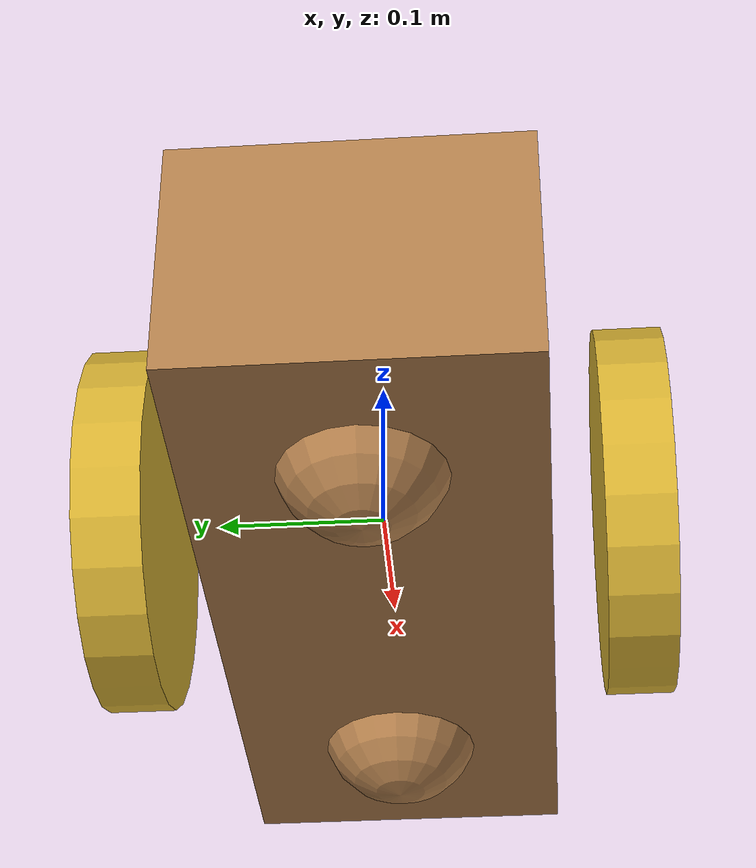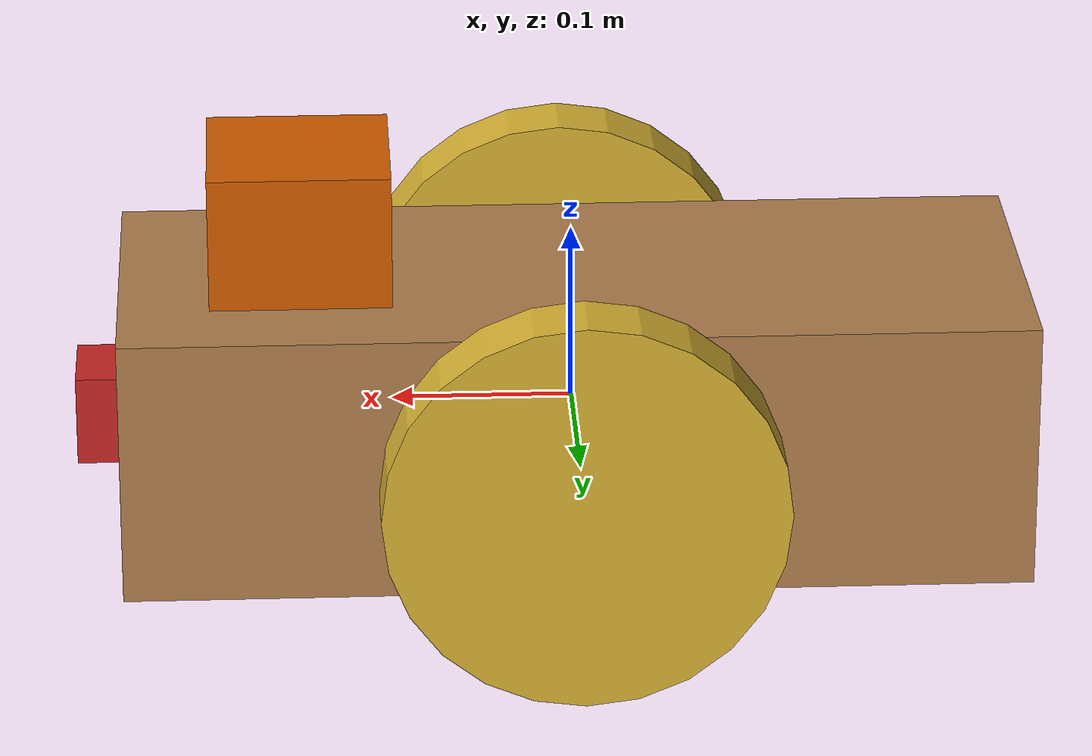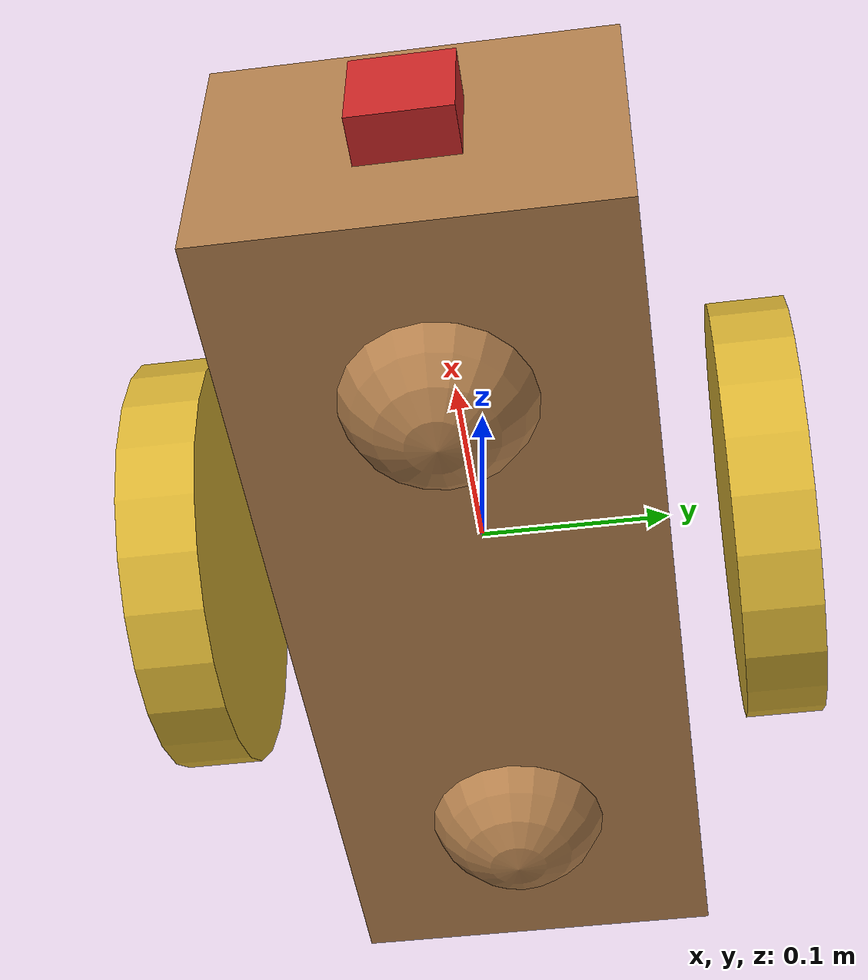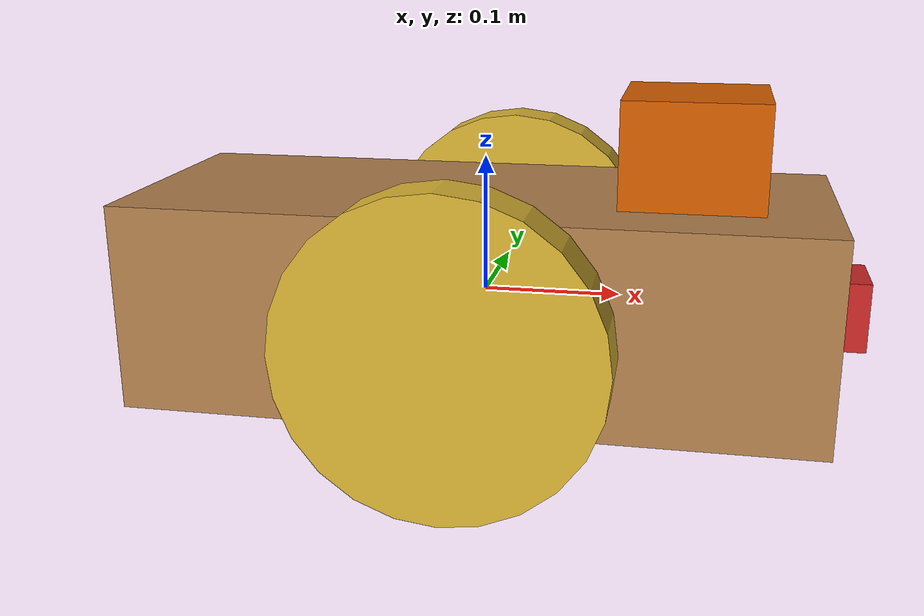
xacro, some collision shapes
<?xml version='1.0'?>

<robot name="my_robot" xmlns:xacro="http://www.ros.org/wiki/xacro">

<gazebo reference="left_wheel">
    <material>Gazebo/Gold</material>
</gazebo>
<gazebo reference="right_wheel">
    <material>Gazebo/Gold</material>
</gazebo>
<gazebo reference="chassis">
    <material>Gazebo/Wood</material>
</gazebo>
<gazebo reference="camera">
    <material>Gazebo/RedBright</material>
</gazebo>
  <link name="base_footprint"></link>
<xacro:include filename="$(find my_robot)/urdf/my_robot.gazebo" />
  <joint name="base_footprint_joint" type="fixed">
    <origin xyz="0 0 0" rpy="0 0 0" />
    <parent link="base_footprint"/>
    <child link="chassis" />
  </joint>

  <link name='chassis'>
    <pose>0 0 0.1 0 0 0</pose>

    <inertial>
      <mass value="15.0"/>
      <origin xyz="0.0 0 0" rpy=" 0 0 0"/>
      <inertia
          ixx="0.1" ixy="0" ixz="0"
          iyy="0.1" iyz="0"
          izz="0.1"
      />
    </inertial>

    <collision name='collision'>
      <origin xyz="0 0 0" rpy=" 0 0 0"/>
      <geometry>
        <box size="0.5 0.2 0.15"/>
      </geometry>
    </collision>

    <visual name='chassis_visual'>
      <origin xyz="0 0 0" rpy=" 0 0 0"/>
      <geometry>
        <box size="0.5 0.2 0.15"/>
      </geometry>
    </visual>

    <collision name='back_caster_collision'>
      <origin xyz="-0.15 0 -0.059" rpy=" 0 0 0"/>
      <geometry>
        <sphere radius="0.05"/>
      </geometry>
    </collision>

    <visual name='back_caster_visual'>
      <origin xyz="-0.15 0 -0.059" rpy=" 0 0 0"/>
      <geometry>
        <sphere radius="0.05"/>
      </geometry>
    </visual>

    <collision name='front_caster_collision'>
      <origin xyz="0.15 0 -0.059" rpy=" 0 0 0"/>
      <geometry>
        <sphere radius="0.05"/>
      </geometry>
    </collision>

    <visual name='front_caster_visual'>
      <origin xyz="0.15 0 -0.059" rpy=" 0 0 0"/>
      <geometry>
        <sphere radius="0.05"/>
      </geometry>
    </visual>

  </link>
 <!-- Create wheel right -->

  <link name="right_wheel">
    <inertial>
      <mass value="5"/>
      <origin rpy="0 1.5707 1.5707" xyz="0 0 0"/>
      <inertia
          ixx="0.1" ixy="0" ixz="0"
          iyy="0.1" iyz="0"
          izz="0.1"
      />
    </inertial>

    <collision name="right_wheel_collision">
      <origin rpy="0 1.5707 1.5707" xyz="0 0 0" />
      <geometry>
        <cylinder length="0.01" radius="0.11"/>
      </geometry>
    </collision>

    <visual name="right_wheel_visual">
      <origin rpy="0 1.5707 1.5707" xyz="0 0 0"/>
      <geometry>
        <cylinder length="0.04" radius="0.11"/>
      </geometry>
    </visual>

  </link>

  <!--   Joint for right wheel  -->
  <joint name="right_wheel_hinge" type="continuous">
    <origin rpy="0 0 0" xyz="0 0.15 0"/>
    <child link="right_wheel" />
    <parent link="chassis"/>
    <axis rpy="0 0 0" xyz="0 1 0"/>
  </joint>

  <!-- Left Wheel link -->

  <link name="left_wheel">
    <inertial>
      <mass value="5"/>
      <origin rpy="0 1.5707 1.5707" xyz="0 0 0"/>
      <inertia
          ixx="0.1" ixy="0" ixz="0"
          iyy="0.1" iyz="0"
          izz="0.1"
      />
    </inertial>

    <collision name="left_wheel_collision">
      <origin rpy="0 1.5707 1.5707" xyz="0 0 0" />
      <geometry>
        <cylinder length="0.04" radius="0.11"/>
      </geometry>
    </collision>

    <visual name="left_wheel_visual">
      <origin rpy="0 1.5707 1.5707" xyz="0 0 0"/>
      <geometry>
        <cylinder length="0.04" radius="0.11"/>
      </geometry>
    </visual>

  </link>

  <!--   Joint for left wheel  -->
  <joint name="left_wheel_hinge" type="continuous">
    <origin rpy="0 0 0" xyz="0 -0.15 0"/>
    <child link="left_wheel" />
    <parent link="chassis"/>
    <axis rpy="0 0 0" xyz="0 1 0"/>
    </joint>
<!-- Camera link -->

  <link name="camera">
    <inertial>
      <mass value="0.1"/>
      <origin rpy="0 0 0" xyz="0 0 0"/>

      <inertia
          ixx="1e-6" ixy="0" ixz="0" iyy="1e-6" iyz="0" izz="1e-6"
      />
    </inertial>

    <collision name="camera_collision">
      <origin rpy="0 0 0" xyz="0 0 0" />
      <geometry>
        <box size=".05 .05 .05"/>
      </geometry>
    </collision>

    <visual name="camera_visual">
      <origin rpy="0 0 0" xyz="0 0 0"/>
      <geometry>
        <box size=".05 .05 .05"/>
      </geometry>
    </visual>
<box_inertia sizeX="0.05" sizeY="0.05" sizeZ="0.05" mass="0.1">
      <origin xyz="0 0 0" rpy="0 0 0" />
    </box_inertia>

</link>

  <!--   Joint camera  -->
  <joint name="camera_joint" type="fixed">
    <origin rpy="0 0 0" xyz="0.25 0 0"/>
    <child link="camera" />
    <parent link="chassis"/>
    <axis rpy="0 0 0" xyz="0 1 0"/>

  </joint>
<!-- Lidar link -->

  <link name="hokuyo">
    <inertial>
      <mass value="1e-5"/>
      <origin rpy="0 0 0" xyz="0 0 0"/>

      <inertia
          ixx="1e-6" ixy="0" ixz="0" iyy="1e-6" iyz="0" izz="1e-6"
      />
    </inertial>

    <collision name="hokuyo_collision">
      <origin rpy="0 0 0" xyz="0 0 0" />
      <geometry>
        <box size="0.1 0.1 0.1"/>
      </geometry>
    </collision>

    <visual name="hokuyo_visual">
      <origin rpy="0 0 0" xyz="0 0 0"/>
      <geometry>
        <mesh filename="package://my_robot/meshes/hokuyo.dae"/>
      </geometry>
    </visual>
  </link>

  <!--   Joint lidar  -->
  <joint name="hokuyo_joint" type="fixed">
    <origin rpy="0 0 0" xyz="0.15 0 0.1"/>
    <child link="hokuyo" />
    <parent link="chassis"/>
    <axis rpy="0 0 0" xyz="0 1 0"/>

  </joint>
  <!--   Optical Camera Joint and link  -->
 <joint name="camera_optical_joint" type="fixed">
    <origin xyz="0 0 0" rpy="-1.5707 0 -1.5707"/>
    <parent link="camera"/>
    <child link="camera_link_optical"/>
  </joint>

  <link name="camera_link_optical">
  </link>

</robot>
